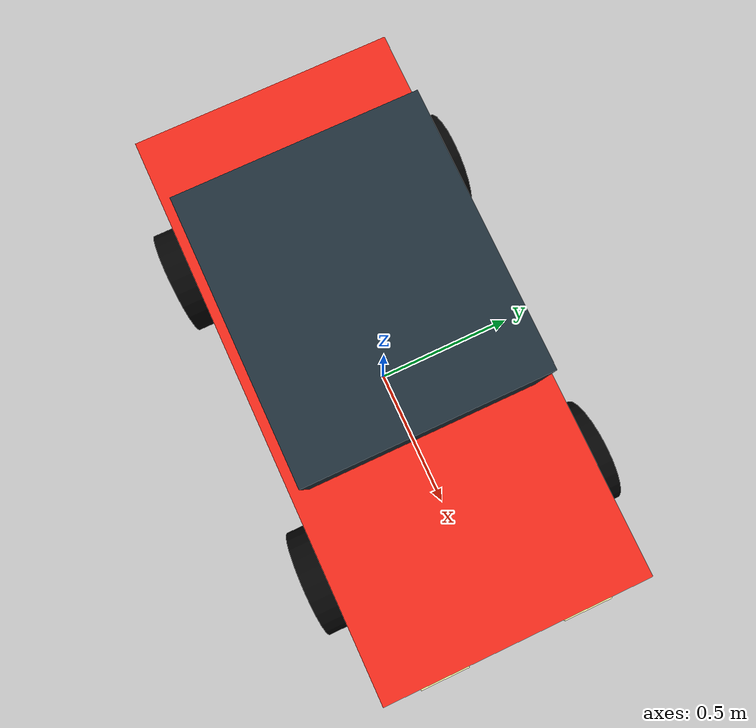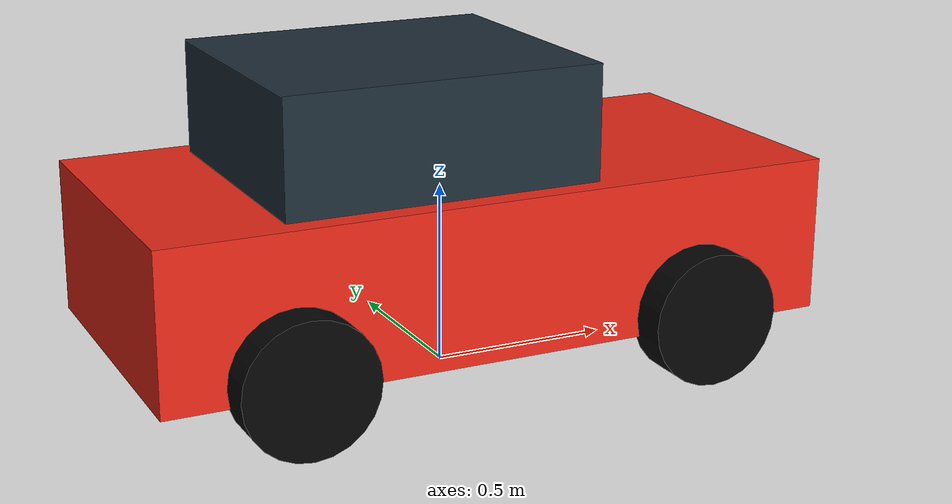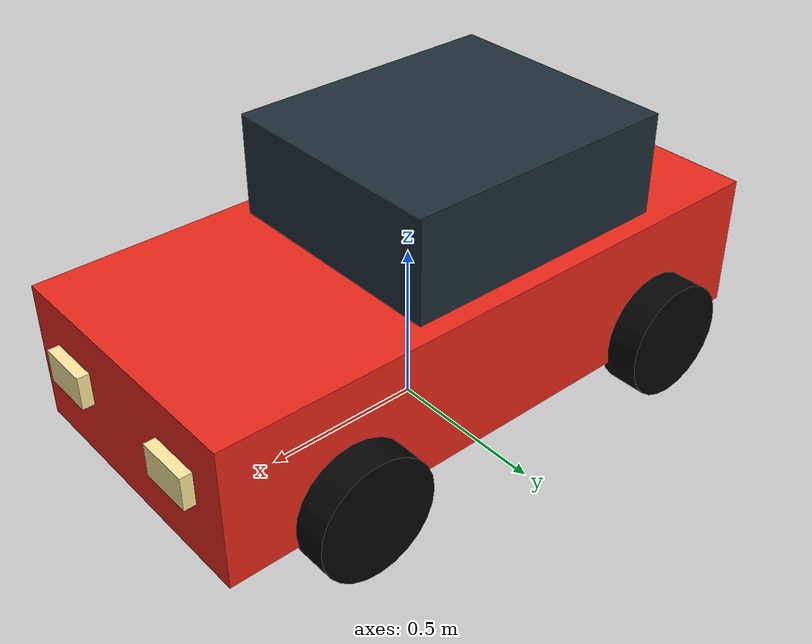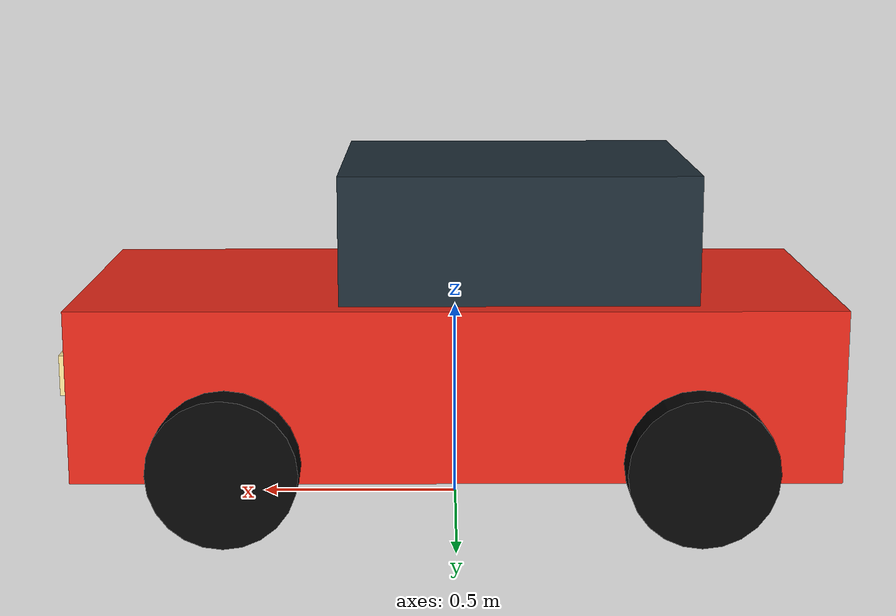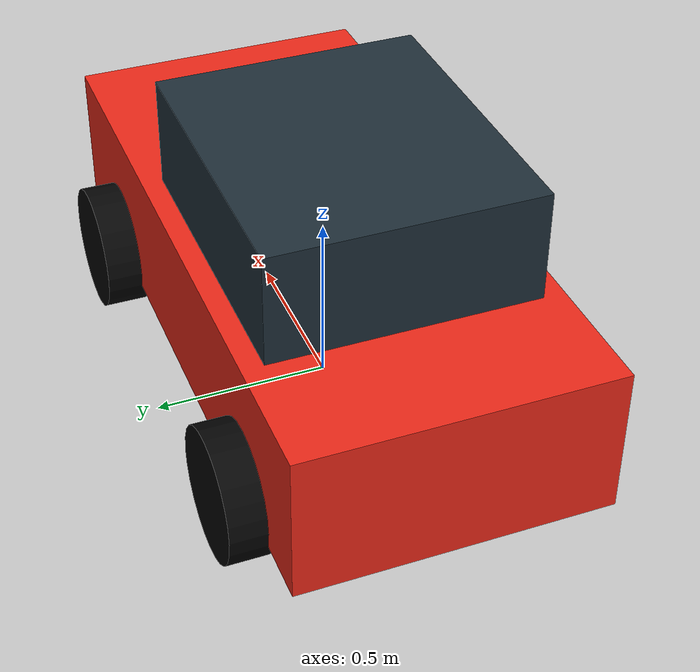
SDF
<?xml version="1.0" ?>
<sdf version="1.10">
  <model name="textured_vehicle">
    <static>false</static>
    <self_collide>false</self_collide>
    <link name="visual_link">
      <gravity>false</gravity>
      <kinematic>true</kinematic>
      <collision name="lidar_collision">
        <pose>-0.02 0 0.45 0 0 0</pose>
        <geometry><box><size>1.90 0.92 0.90</size></box></geometry>
      </collision>
      <visual name="body">
        <pose>0 0 0.36 0 0 0</pose>
        <geometry><box><size>1.85 0.86 0.42</size></box></geometry>
        <material>
          <diffuse>0.92 0.16 0.10 1</diffuse>
          <pbr><metal><albedo_map>materials/textures/vehicle_body.png</albedo_map><roughness>0.55</roughness></metal></pbr>
        </material>
      </visual>
      <visual name="cabin">
        <pose>-0.15 0 0.70 0 0 0</pose>
        <geometry><box><size>0.86 0.74 0.36</size></box></geometry>
        <material>
          <diffuse>0.12 0.18 0.22 1</diffuse>
          <pbr><metal><albedo_map>materials/textures/vehicle_window.png</albedo_map><roughness>0.25</roughness></metal></pbr>
        </material>
      </visual>
      <visual name="front_light_left"><pose>0.94 0.24 0.39 0 0 0</pose><geometry><box><size>0.04 0.16 0.10</size></box></geometry><material><diffuse>1.0 0.92 0.62 1</diffuse></material></visual>
      <visual name="front_light_right"><pose>0.94 -0.24 0.39 0 0 0</pose><geometry><box><size>0.04 0.16 0.10</size></box></geometry><material><diffuse>1.0 0.92 0.62 1</diffuse></material></visual>
      <visual name="wheel_fl"><pose>0.55 0.47 0.20 1.570796 0 0</pose><geometry><cylinder><radius>0.18</radius><length>0.12</length></cylinder></geometry><material><diffuse>0.02 0.02 0.02 1</diffuse></material></visual>
      <visual name="wheel_fr"><pose>0.55 -0.47 0.20 1.570796 0 0</pose><geometry><cylinder><radius>0.18</radius><length>0.12</length></cylinder></geometry><material><diffuse>0.02 0.02 0.02 1</diffuse></material></visual>
      <visual name="wheel_rl"><pose>-0.58 0.47 0.20 1.570796 0 0</pose><geometry><cylinder><radius>0.18</radius><length>0.12</length></cylinder></geometry><material><diffuse>0.02 0.02 0.02 1</diffuse></material></visual>
      <visual name="wheel_rr"><pose>-0.58 -0.47 0.20 1.570796 0 0</pose><geometry><cylinder><radius>0.18</radius><length>0.12</length></cylinder></geometry><material><diffuse>0.02 0.02 0.02 1</diffuse></material></visual>
    </link>
  </model>
</sdf>
